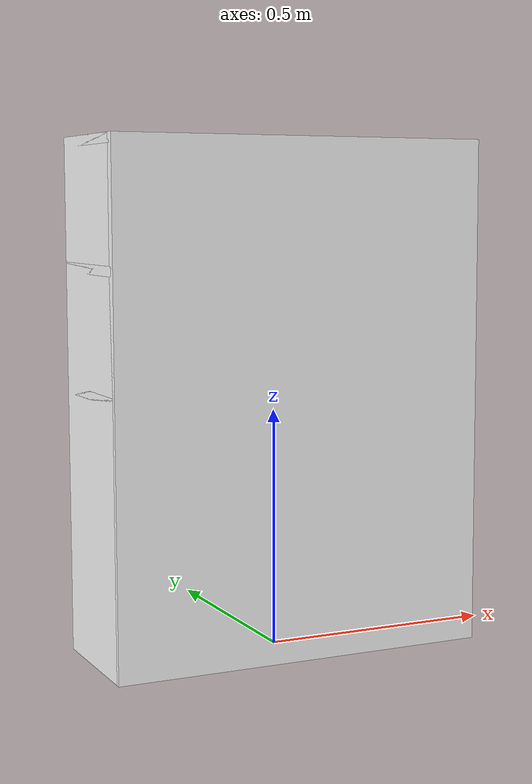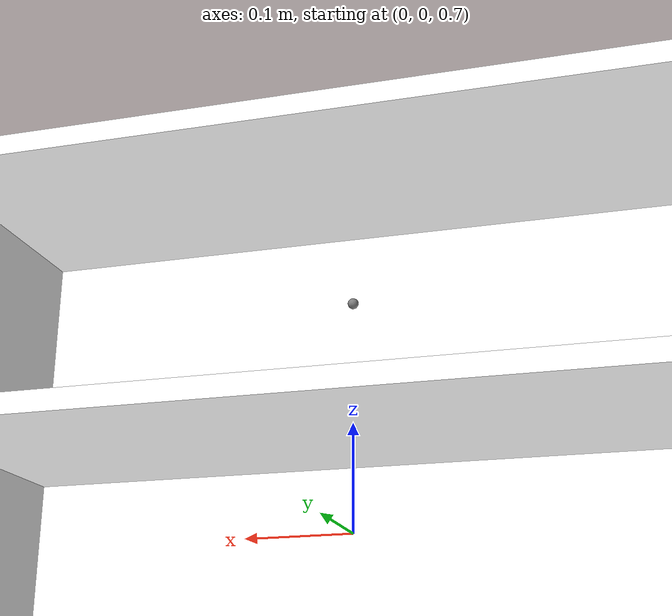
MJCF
<mujoco model="regal_weiss_Thies">
    <compiler convexhull="true" angle="radian" meshdir="environments/" />
    <statistic extent="0.3" center="0.3 0 0" meansize=".03"/>
      <default class="shelf_white">
        <geom group="1" contype="1" conaffinity="1" condim="3"/>
      </default>
    <worldbody>
        <!--light pos="0 0 1.5" dir="0 0 -1" directional="true"/-->
         <body name="shelf" pos="0 0 0">
            <!-- Left Wall -->
            <geom name="left_wall" group="1" contype="1" conaffinity="1" condim="3" type="box" size="0.01 0.14 0.53" pos="-0.39 0 0.53" rgba="1 1 1 1"/>

            <!-- Right Wall -->
            <geom name="right_wall" group="1" contype="1" conaffinity="1" condim="3" type="box" size="0.01 0.14 0.53" pos="0.39 0 0.53" rgba="1 1 1 1"/>

            <!-- Bottom Shelf -->
            <geom name="bottom_shelf" group="1" contype="1" conaffinity="1" condim="3" type="box" size="0.4 0.14 0.01" pos="0 0 0.10" rgba="1 1 1 1"/>

            <!-- Second Shelf -->
            <geom name="second_shelf" group="1" contype="1" conaffinity="1" condim="3" type="box" size="0.4 0.14 0.01" pos="0 0 0.55" rgba="1 1 1 1"/>

            <!-- Third Shelf -->
            <geom name="third_shelf" group="1" contype="1" conaffinity="1" condim="3" type="box" size="0.4 0.14 0.01" pos="0 0 0.80" rgba="1 1 1 1"/>

            <!-- Top Shelf -->
            <geom name="top_shelf" group="1" contype="1" conaffinity="1" condim="3" type="box" size="0.4 0.14 0.01" pos="0 0 1.05" rgba="1 1 1 1"/>
             <site name="gripping_point" type="sphere" pos="0 0 0.915" quat="0.7071068 0.7071068 0 0"/>

            <!-- Back Wall -->
            <geom name="back_wall" type="box" size="0.4 0.01 0.53" pos="0 -0.14 0.53" rgba="1 1 1 1"/>
        </body>
    </worldbody>
</mujoco>
